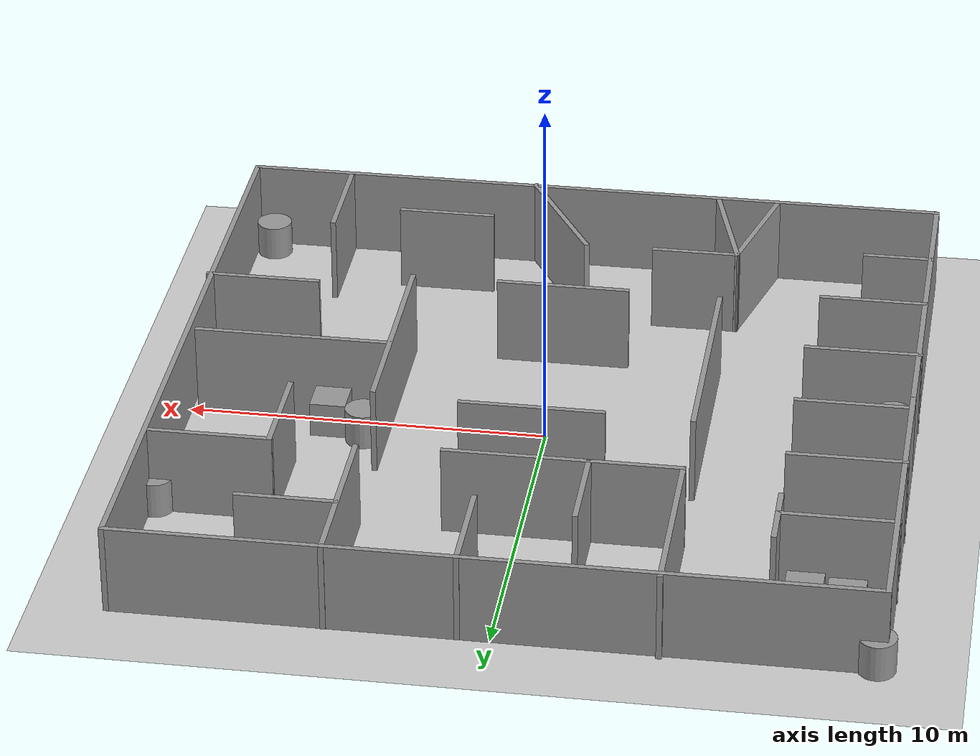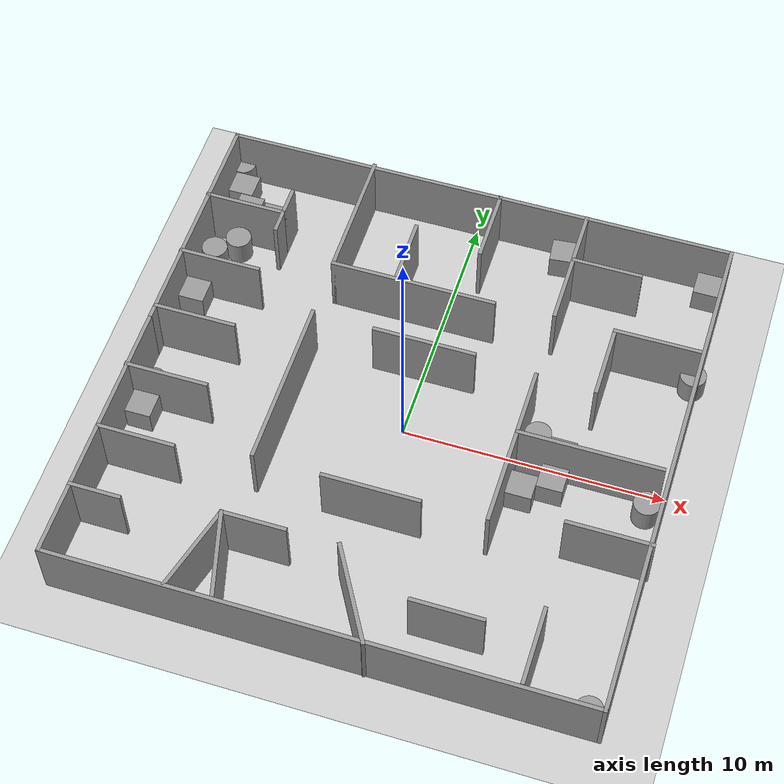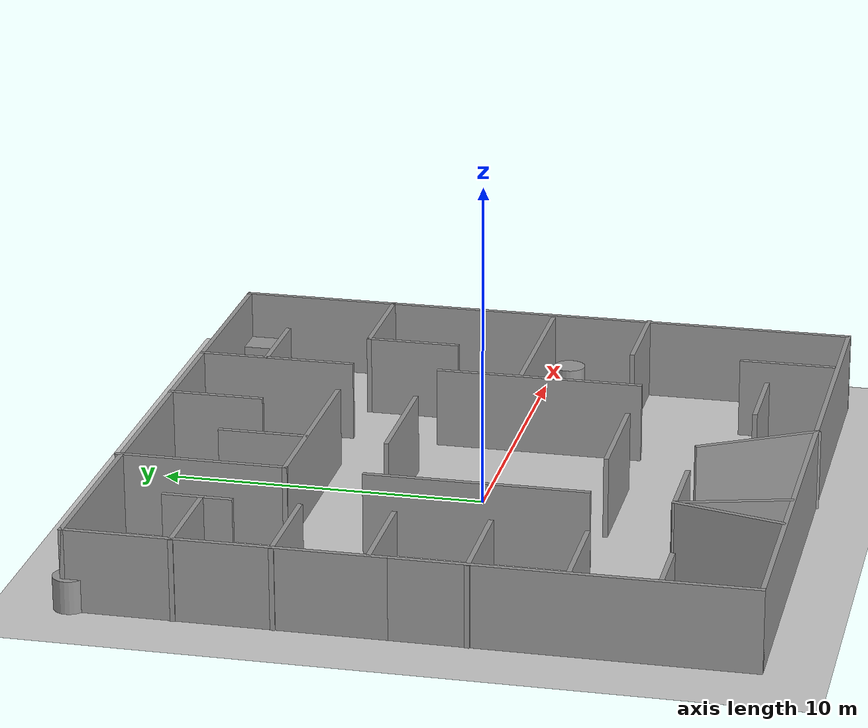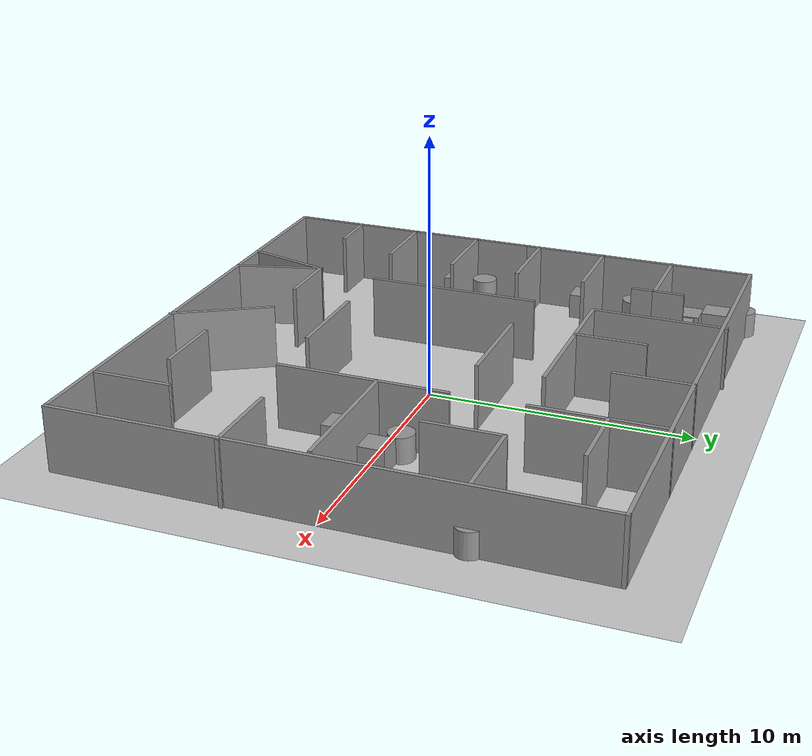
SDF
<sdf version="1.7">
 <world name="default">
  <light name="sun" type="directional">
   <pose>0 0 10 0 -0 0</pose>
   <diffuse>0.8 0.8 0.8 1</diffuse>
   <specular>0.2 0.2 0.2 1</specular>
   <attenuation>
    <range>1000</range>
    <constant>0.9</constant>
    <linear>0.01</linear>
    <quadratic>0.001</quadratic>
   </attenuation>
   <direction>-0.5 0.1 -0.9</direction>
   <spot><inner_angle>0</inner_angle><outer_angle>0</outer_angle><falloff>0</falloff></spot>
  </light>
  <model name="ground_plane">
   <static>1</static>
   <link name="link">
    <collision name="collision">
     <geometry><plane><normal>0 0 1</normal><size>100 100</size></plane></geometry>
     <surface>
      <contact><collide_bitmask>65535</collide_bitmask></contact>
      <friction><ode><mu>100</mu><mu2>50</mu2></ode></friction>
     </surface>
    </collision>
    <visual name="visual">
     <cast_shadows>0</cast_shadows>
     <geometry><plane><normal>0 0 1</normal><size>100 100</size></plane></geometry>
     <material>
      <script><uri>file://media/materials/scripts/gazebo.material</uri><name>Gazebo/Grey</name></script>
     </material>
    </visual>
   </link>
  </model>
  <gravity>0 0 -9.8</gravity>
  <magnetic_field>6e-06 2.3e-05 -4.2e-05</magnetic_field>
  <atmosphere type="adiabatic"/>
  <physics type="ode">
   <max_step_size>0.001</max_step_size>
   <real_time_factor>1</real_time_factor>
   <real_time_update_rate>1000</real_time_update_rate>
  </physics>
  <scene><ambient>0.4 0.4 0.4 1</ambient><background>0.7 0.7 0.7 1</background><shadows>1</shadows></scene>
  <spherical_coordinates>
   <surface_model>EARTH_WGS84</surface_model>
   <latitude_deg>0</latitude_deg>
   <longitude_deg>0</longitude_deg>
   <elevation>0</elevation>
   <heading_deg>0</heading_deg>
  </spherical_coordinates>
  <model name="marty">
   <pose>-0.01206 0.09181 0 0 -0 0</pose>
   <link name="Wall_10">
    <collision name="Wall_10_Collision">
     <geometry><box><size>1.25 0.15 2.5</size></box></geometry>
     <pose>0 0 1.25 0 -0 0</pose>
    </collision>
    <visual name="Wall_10_Visual">
     <pose>0 0 1.25 0 -0 0</pose>
     <geometry><box><size>1.25 0.15 2.5</size></box></geometry>
     <material>
      <script><uri>file://media/materials/scripts/gazebo.material</uri><name>Gazebo/Grey</name></script>
      <ambient>1 1 1 1</ambient>
     </material>
     <meta><layer>0</layer></meta>
    </visual>
    <pose>-7.00073 7.24115 0 0 -0 1.5708</pose>
   </link>
   <link name="Wall_12">
    <collision name="Wall_12_Collision">
     <geometry><box><size>1 0.15 2.5</size></box></geometry>
     <pose>0 0 1.25 0 -0 0</pose>
    </collision>
    <visual name="Wall_12_Visual">
     <pose>0 0 1.25 0 -0 0</pose>
     <geometry><box><size>1 0.15 2.5</size></box></geometry>
     <material>
      <script><uri>file://media/materials/scripts/gazebo.material</uri><name>Gazebo/Grey</name></script>
      <ambient>1 1 1 1</ambient>
     </material>
     <meta><layer>0</layer></meta>
    </visual>
    <pose>-7.00073 6.26615 0 0 -0 -1.5708</pose>
   </link>
   <link name="Wall_14">
    <collision name="Wall_14_Collision">
     <geometry><box><size>3.25 0.15 2.5</size></box></geometry>
     <pose>0 0 1.25 0 -0 0</pose>
    </collision>
    <visual name="Wall_14_Visual">
     <pose>0 0 1.25 0 -0 0</pose>
     <geometry><box><size>3.25 0.15 2.5</size></box></geometry>
     <material>
      <script><uri>file://media/materials/scripts/gazebo.material</uri><name>Gazebo/Grey</name></script>
      <ambient>1 1 1 1</ambient>
     </material>
     <meta><layer>0</layer></meta>
    </visual>
    <pose>-8.55073 3.78507 0 0 -0 0</pose>
   </link>
   <link name="Wall_19">
    <collision name="Wall_19_Collision">
     <geometry><box><size>3.25 0.15 2.5</size></box></geometry>
     <pose>0 0 1.25 0 -0 0</pose>
    </collision>
    <visual name="Wall_19_Visual">
     <pose>0 0 1.25 0 -0 0</pose>
     <geometry><box><size>3.25 0.15 2.5</size></box></geometry>
     <material>
      <script><uri>file://media/materials/scripts/gazebo.material</uri><name>Gazebo/Grey</name></script>
      <ambient>1 1 1 1</ambient>
     </material>
     <meta><layer>0</layer></meta>
    </visual>
    <pose>-8.52014 1.03195 0 0 -0 0</pose>
   </link>
   <link name="Wall_2">
    <collision name="Wall_2_Collision">
     <geometry><box><size>10.5 0.15 2.5</size></box></geometry>
     <pose>0 0 1.25 0 -0 0</pose>
    </collision>
    <visual name="Wall_2_Visual">
     <pose>0 0 1.25 0 -0 0</pose>
     <geometry><box><size>10.5 0.15 2.5</size></box></geometry>
     <material>
      <script><uri>file://media/materials/scripts/gazebo.material</uri><name>Gazebo/Grey</name></script>
      <ambient>1 1 1 1</ambient>
     </material>
     <meta><layer>0</layer></meta>
    </visual>
    <pose>-10.0719 -4.77295 0 0 -0 -1.5708</pose>
   </link>
   <link name="Wall_22">
    <collision name="Wall_22_Collision">
     <geometry><box><size>3.25 0.15 2.5</size></box></geometry>
     <pose>0 0 1.25 0 -0 0</pose>
    </collision>
    <visual name="Wall_22_Visual">
     <pose>0 0 1.25 0 -0 0</pose>
     <geometry><box><size>3.25 0.15 2.5</size></box></geometry>
     <material>
      <script><uri>file://media/materials/scripts/gazebo.material</uri><name>Gazebo/Grey</name></script>
      <ambient>1 1 1 1</ambient>
     </material>
     <meta><layer>0</layer></meta>
    </visual>
    <pose>-8.55073 -1.78235 0 0 -0 0</pose>
   </link>
   <link name="Wall_24">
    <collision name="Wall_24_Collision">
     <geometry><box><size>3 0.15 2.5</size></box></geometry>
     <pose>0 0 1.25 0 -0 0</pose>
    </collision>
    <visual name="Wall_24_Visual">
     <pose>0 0 1.25 0 -0 0</pose>
     <geometry><box><size>3 0.15 2.5</size></box></geometry>
     <material>
      <script><uri>file://media/materials/scripts/gazebo.material</uri><name>Gazebo/Grey</name></script>
      <ambient>1 1 1 1</ambient>
     </material>
     <meta><layer>0</layer></meta>
    </visual>
    <pose>-8.61455 -4.59665 0 0 -0 0</pose>
   </link>
   <link name="Wall_26">
    <collision name="Wall_26_Collision">
     <geometry><box><size>2 0.15 2.5</size></box></geometry>
     <pose>0 0 1.25 0 -0 0</pose>
    </collision>
    <visual name="Wall_26_Visual">
     <pose>0 0 1.25 0 -0 0</pose>
     <geometry><box><size>2 0.15 2.5</size></box></geometry>
     <material>
      <script><uri>file://media/materials/scripts/gazebo.material</uri><name>Gazebo/Grey</name></script>
      <ambient>1 1 1 1</ambient>
     </material>
     <meta><layer>0</layer></meta>
    </visual>
    <pose>-9.14514 -7.16623 0 0 -0 0</pose>
   </link>
   <link name="Wall_29">
    <collision name="Wall_29_Collision">
     <geometry><box><size>6.75 0.15 2.5</size></box></geometry>
     <pose>0 0 1.25 0 -0 0</pose>
    </collision>
    <visual name="Wall_29_Visual">
     <pose>0 0 1.25 0 -0 0</pose>
     <geometry><box><size>6.75 0.15 2.5</size></box></geometry>
     <material>
      <script><uri>file://media/materials/scripts/gazebo.material</uri><name>Gazebo/Grey</name></script>
      <ambient>1 1 1 1</ambient>
     </material>
     <meta><layer>0</layer></meta>
    </visual>
    <pose>-4.34976 -0.799715 0 0 -0 -1.5708</pose>
   </link>
   <link name="Wall_3">
    <collision name="Wall_3_Collision">
     <geometry><box><size>20.25 0.15 2.5</size></box></geometry>
     <pose>0 0 1.25 0 -0 0</pose>
    </collision>
    <visual name="Wall_3_Visual">
     <pose>0 0 1.25 0 -0 0</pose>
     <geometry><box><size>20.25 0.15 2.5</size></box></geometry>
     <material>
      <script><uri>file://media/materials/scripts/gazebo.material</uri><name>Gazebo/Grey</name></script>
      <ambient>1 1 1 1</ambient>
     </material>
     <meta><layer>0</layer></meta>
    </visual>
    <pose>-0.021885 -9.94795 0 0 -0 0</pose>
   </link>
   <link name="Wall_31">
    <collision name="Wall_31_Collision">
     <geometry><box><size>3.75 0.15 2.5</size></box></geometry>
     <pose>0 0 1.25 0 -0 0</pose>
    </collision>
    <visual name="Wall_31_Visual">
     <pose>0 0 1.25 0 -0 0</pose>
     <geometry><box><size>3.75 0.15 2.5</size></box></geometry>
     <material>
      <script><uri>file://media/materials/scripts/gazebo.material</uri><name>Gazebo/Grey</name></script>
      <ambient>1 1 1 1</ambient>
     </material>
     <meta><layer>0</layer></meta>
    </visual>
    <pose>0.080997 -4.16838 0 0 -0 0</pose>
   </link>
   <link name="Wall_33">
    <collision name="Wall_33_Collision">
     <geometry><box><size>4 0.15 2.5</size></box></geometry>
     <pose>0 0 1.25 0 -0 0</pose>
    </collision>
    <visual name="Wall_33_Visual">
     <pose>0 0 1.25 0 -0 0</pose>
     <geometry><box><size>4 0.15 2.5</size></box></geometry>
     <material>
      <script><uri>file://media/materials/scripts/gazebo.material</uri><name>Gazebo/Grey</name></script>
      <ambient>1 1 1 1</ambient>
     </material>
     <meta><layer>0</layer></meta>
    </visual>
    <pose>0.022455 2.4391 0 0 -0 0</pose>
   </link>
   <link name="Wall_35">
    <collision name="Wall_35_Collision">
     <geometry><box><size>6.5 0.15 2.5</size></box></geometry>
     <pose>0 0 1.25 0 -0 0</pose>
    </collision>
    <visual name="Wall_35_Visual">
     <pose>0 0 1.25 0 -0 0</pose>
     <geometry><box><size>6.5 0.15 2.5</size></box></geometry>
     <material>
      <script><uri>file://media/materials/scripts/gazebo.material</uri><name>Gazebo/Grey</name></script>
      <ambient>1 1 1 1</ambient>
     </material>
     <meta><layer>0</layer></meta>
    </visual>
    <pose>4.36845 -0.950027 0 0 -0 -1.5708</pose>
   </link>
   <link name="Wall_37">
    <collision name="Wall_37_Collision">
     <geometry><box><size>5.25 0.15 2.5</size></box></geometry>
     <pose>0 0 1.25 0 -0 0</pose>
    </collision>
    <visual name="Wall_37_Visual">
     <pose>0 0 1.25 0 -0 0</pose>
     <geometry><box><size>5.25 0.15 2.5</size></box></geometry>
     <material>
      <script><uri>file://media/materials/scripts/gazebo.material</uri><name>Gazebo/Grey</name></script>
      <ambient>1 1 1 1</ambient>
     </material>
     <meta><layer>0</layer></meta>
    </visual>
    <pose>-4.34976 7.46691 0 0 -0 1.5708</pose>
   </link>
   <link name="Wall_39">
    <collision name="Wall_39_Collision">
     <geometry><box><size>5 0.15 2.5</size></box></geometry>
     <pose>0 0 1.25 0 -0 0</pose>
    </collision>
    <visual name="Wall_39_Visual">
     <pose>0 0 1.25 0 -0 0</pose>
     <geometry><box><size>5 0.15 2.5</size></box></geometry>
     <material>
      <script><uri>file://media/materials/scripts/gazebo.material</uri><name>Gazebo/Grey</name></script>
      <ambient>1 1 1 1</ambient>
     </material>
     <meta><layer>0</layer></meta>
    </visual>
    <pose>4.33141 7.48953 0 0 -0 -1.5708</pose>
   </link>
   <link name="Wall_4">
    <collision name="Wall_4_Collision">
     <geometry><box><size>20 0.15 2.5</size></box></geometry>
     <pose>0 0 1.25 0 -0 0</pose>
    </collision>
    <visual name="Wall_4_Visual">
     <pose>0 0 1.25 0 -0 0</pose>
     <geometry><box><size>20 0.15 2.5</size></box></geometry>
     <material>
      <script><uri>file://media/materials/scripts/gazebo.material</uri><name>Gazebo/Grey</name></script>
      <ambient>1 1 1 1</ambient>
     </material>
     <meta><layer>0</layer></meta>
    </visual>
    <pose>10.0281 -0.022954 0 0 -0 1.5708</pose>
   </link>
   <link name="Wall_41">
    <collision name="Wall_41_Collision">
     <geometry><box><size>6.5 0.15 2.5</size></box></geometry>
     <pose>0 0 1.25 0 -0 0</pose>
    </collision>
    <visual name="Wall_41_Visual">
     <pose>0 0 1.25 0 -0 0</pose>
     <geometry><box><size>6.5 0.15 2.5</size></box></geometry>
     <material>
      <script><uri>file://media/materials/scripts/gazebo.material</uri><name>Gazebo/Grey</name></script>
      <ambient>1 1 1 1</ambient>
     </material>
     <meta><layer>0</layer></meta>
    </visual>
    <pose>-1.17476 4.91691 0 0 -0 0</pose>
   </link>
   <link name="Wall_43">
    <collision name="Wall_43_Collision">
     <geometry><box><size>3 0.15 2.5</size></box></geometry>
     <pose>0 0 1.25 0 -0 0</pose>
    </collision>
    <visual name="Wall_43_Visual">
     <pose>0 0 1.25 0 -0 0</pose>
     <geometry><box><size>3 0.15 2.5</size></box></geometry>
     <material>
      <script><uri>file://media/materials/scripts/gazebo.material</uri><name>Gazebo/Grey</name></script>
      <ambient>1 1 1 1</ambient>
     </material>
     <meta><layer>0</layer></meta>
    </visual>
    <pose>0.848711 8.48953 0 0 -0 -1.5708</pose>
   </link>
   <link name="Wall_46">
    <collision name="Wall_46_Collision">
     <geometry><box><size>2.75 0.15 2.5</size></box></geometry>
     <pose>0 0 1.25 0 -0 0</pose>
    </collision>
    <visual name="Wall_46_Visual">
     <pose>0 0 1.25 0 -0 0</pose>
     <geometry><box><size>2.75 0.15 2.5</size></box></geometry>
     <material>
      <script><uri>file://media/materials/scripts/gazebo.material</uri><name>Gazebo/Grey</name></script>
      <ambient>1 1 1 1</ambient>
     </material>
     <meta><layer>0</layer></meta>
    </visual>
    <pose>-1.86005 6.25755 0 0 -0 -1.5708</pose>
   </link>
   <link name="Wall_48">
    <collision name="Wall_48_Collision">
     <geometry><box><size>2.75 0.15 2.5</size></box></geometry>
     <pose>0 0 1.25 0 -0 0</pose>
    </collision>
    <visual name="Wall_48_Visual">
     <pose>0 0 1.25 0 -0 0</pose>
     <geometry><box><size>2.75 0.15 2.5</size></box></geometry>
     <material>
      <script><uri>file://media/materials/scripts/gazebo.material</uri><name>Gazebo/Grey</name></script>
      <ambient>1 1 1 1</ambient>
     </material>
     <meta><layer>0</layer></meta>
    </visual>
    <pose>5.66659 7.8038 0 0 -0 0</pose>
   </link>
   <link name="Wall_5">
    <collision name="Wall_5_Collision">
     <geometry><box><size>20.25 0.15 2.5</size></box></geometry>
     <pose>0 0 1.25 0 -0 0</pose>
    </collision>
    <visual name="Wall_5_Visual">
     <pose>0 0 1.25 0 -0 0</pose>
     <geometry><box><size>20.25 0.15 2.5</size></box></geometry>
     <material>
      <script><uri>file://media/materials/scripts/gazebo.material</uri><name>Gazebo/Grey</name></script>
      <ambient>1 1 1 1</ambient>
     </material>
     <meta><layer>0</layer></meta>
    </visual>
    <pose>-0.021885 9.90205 0 0 -0 3.14159</pose>
   </link>
   <link name="Wall_50">
    <collision name="Wall_50_Collision">
     <geometry><box><size>3.5 0.15 2.5</size></box></geometry>
     <pose>0 0 1.25 0 -0 0</pose>
    </collision>
    <visual name="Wall_50_Visual">
     <pose>0 0 1.25 0 -0 0</pose>
     <geometry><box><size>3.5 0.15 2.5</size></box></geometry>
     <material>
      <script><uri>file://media/materials/scripts/gazebo.material</uri><name>Gazebo/Grey</name></script>
      <ambient>1 1 1 1</ambient>
     </material>
     <meta><layer>0</layer></meta>
    </visual>
    <pose>8.32821 5.02468 0 0 -0 0</pose>
   </link>
   <link name="Wall_52">
    <collision name="Wall_52_Collision">
     <geometry><box><size>3 0.15 2.5</size></box></geometry>
     <pose>0 0 1.25 0 -0 0</pose>
    </collision>
    <visual name="Wall_52_Visual">
     <pose>0 0 1.25 0 -0 0</pose>
     <geometry><box><size>3 0.15 2.5</size></box></geometry>
     <material>
      <script><uri>file://media/materials/scripts/gazebo.material</uri><name>Gazebo/Grey</name></script>
      <ambient>1 1 1 1</ambient>
     </material>
     <meta><layer>0</layer></meta>
    </visual>
    <pose>6.65321 3.59968 0 0 -0 -1.5708</pose>
   </link>
   <link name="Wall_55">
    <collision name="Wall_55_Collision">
     <geometry><box><size>5.5 0.15 2.5</size></box></geometry>
     <pose>0 0 1.25 0 -0 0</pose>
    </collision>
    <visual name="Wall_55_Visual">
     <pose>0 0 1.25 0 -0 0</pose>
     <geometry><box><size>5.5 0.15 2.5</size></box></geometry>
     <material>
      <script><uri>file://media/materials/scripts/gazebo.material</uri><name>Gazebo/Grey</name></script>
      <ambient>1 1 1 1</ambient>
     </material>
     <meta><layer>0</layer></meta>
    </visual>
    <pose>7.07677 -0.35767 0 0 -0 0</pose>
   </link>
   <link name="Wall_57">
    <collision name="Wall_57_Collision">
     <geometry><box><size>3.5 0.15 2.5</size></box></geometry>
     <pose>0 0 1.25 0 -0 0</pose>
    </collision>
    <visual name="Wall_57_Visual">
     <pose>0 0 1.25 0 -0 0</pose>
     <geometry><box><size>3.5 0.15 2.5</size></box></geometry>
     <material>
      <script><uri>file://media/materials/scripts/gazebo.material</uri><name>Gazebo/Grey</name></script>
      <ambient>1 1 1 1</ambient>
     </material>
     <meta><layer>0</layer></meta>
    </visual>
    <pose>-5.01476 -8.27319 0 0 -0 1.309</pose>
   </link>
   <link name="Wall_58">
    <collision name="Wall_58_Collision">
     <geometry><box><size>3.5 0.15 2.5</size></box></geometry>
     <pose>0 0 1.25 0 -0 0</pose>
    </collision>
    <visual name="Wall_58_Visual">
     <pose>0 0 1.25 0 -0 0</pose>
     <geometry><box><size>3.5 0.15 2.5</size></box></geometry>
     <material>
      <script><uri>file://media/materials/scripts/gazebo.material</uri><name>Gazebo/Grey</name></script>
      <ambient>1 1 1 1</ambient>
     </material>
     <meta><layer>0</layer></meta>
    </visual>
    <pose>-4.14772 -8.27319 0 0 -0 -1.309</pose>
   </link>
   <link name="Wall_6">
    <collision name="Wall_6_Collision">
     <geometry><box><size>9.5 0.15 2.5</size></box></geometry>
     <pose>0 0 1.25 0 -0 0</pose>
    </collision>
    <visual name="Wall_6_Visual">
     <pose>0 0 1.25 0 -0 0</pose>
     <geometry><box><size>9.5 0.15 2.5</size></box></geometry>
     <material>
      <script><uri>file://media/materials/scripts/gazebo.material</uri><name>Gazebo/Grey</name></script>
      <ambient>1 1 1 1</ambient>
     </material>
     <meta><layer>0</layer></meta>
    </visual>
    <pose>-10.0719 5.22705 0 0 -0 -1.5708</pose>
   </link>
   <link name="Wall_61">
    <collision name="Wall_61_Collision">
     <geometry><box><size>4 0.15 2.5</size></box></geometry>
     <pose>0 0 1.25 0 -0 0</pose>
    </collision>
    <visual name="Wall_61_Visual">
     <pose>0 0 1.25 0 -0 0</pose>
     <geometry><box><size>4 0.15 2.5</size></box></geometry>
     <material>
      <script><uri>file://media/materials/scripts/gazebo.material</uri><name>Gazebo/Grey</name></script>
      <ambient>1 1 1 1</ambient>
     </material>
     <meta><layer>0</layer></meta>
    </visual>
    <pose>0.731257 -8.32236 0 0 -0 -1.0472</pose>
   </link>
   <link name="Wall_63">
    <collision name="Wall_63_Collision">
     <geometry><box><size>2.5 0.15 2.5</size></box></geometry>
     <pose>0 0 1.25 0 -0 0</pose>
    </collision>
    <visual name="Wall_63_Visual">
     <pose>0 0 1.25 0 -0 0</pose>
     <geometry><box><size>2.5 0.15 2.5</size></box></geometry>
     <material>
      <script><uri>file://media/materials/scripts/gazebo.material</uri><name>Gazebo/Grey</name></script>
      <ambient>1 1 1 1</ambient>
     </material>
     <meta><layer>0</layer></meta>
    </visual>
    <pose>-3.40624 -6.65526 0 0 -0 0</pose>
   </link>
   <link name="Wall_69">
    <collision name="Wall_69_Collision">
     <geometry><box><size>3.25 0.15 2.5</size></box></geometry>
     <pose>0 0 1.25 0 -0 0</pose>
    </collision>
    <visual name="Wall_69_Visual">
     <pose>0 0 1.25 0 -0 0</pose>
     <geometry><box><size>3.25 0.15 2.5</size></box></geometry>
     <material>
      <script><uri>file://media/materials/scripts/gazebo.material</uri><name>Gazebo/Grey</name></script>
      <ambient>1 1 1 1</ambient>
     </material>
     <meta><layer>0</layer></meta>
    </visual>
    <pose>8.55073 -3.4534 0 0 -0 3.14159</pose>
   </link>
   <link name="Wall_72">
    <collision name="Wall_72_Collision">
     <geometry><box><size>2.75 0.15 2.5</size></box></geometry>
     <pose>0 0 1.25 0 -0 0</pose>
    </collision>
    <visual name="Wall_72_Visual">
     <pose>0 0 1.25 0 -0 0</pose>
     <geometry><box><size>2.75 0.15 2.5</size></box></geometry>
     <material>
      <script><uri>file://media/materials/scripts/gazebo.material</uri><name>Gazebo/Grey</name></script>
      <ambient>1 1 1 1</ambient>
     </material>
     <meta><layer>0</layer></meta>
    </visual>
    <pose>4.01319 -7.95628 0 0 -0 0</pose>
   </link>
   <link name="Wall_74">
    <collision name="Wall_74_Collision">
     <geometry><box><size>3 0.15 2.5</size></box></geometry>
     <pose>0 0 1.25 0 -0 0</pose>
    </collision>
    <visual name="Wall_74_Visual">
     <pose>0 0 1.25 0 -0 0</pose>
     <geometry><box><size>3 0.15 2.5</size></box></geometry>
     <material>
      <script><uri>file://media/materials/scripts/gazebo.material</uri><name>Gazebo/Grey</name></script>
      <ambient>1 1 1 1</ambient>
     </material>
     <meta><layer>0</layer></meta>
    </visual>
    <pose>7.18089 -8.3611 0 0 -0 -1.5708</pose>
   </link>
   <link name="Wall_9">
    <collision name="Wall_9_Collision">
     <geometry><box><size>3.25 0.15 2.5</size></box></geometry>
     <pose>0 0 1.25 0 -0 0</pose>
    </collision>
    <visual name="Wall_9_Visual">
     <pose>0 0 1.25 0 -0 0</pose>
     <geometry><box><size>3.25 0.15 2.5</size></box></geometry>
     <material>
      <script><uri>file://media/materials/scripts/gazebo.material</uri><name>Gazebo/Grey</name></script>
      <ambient>1 1 1 1</ambient>
     </material>
     <meta><layer>0</layer></meta>
    </visual>
    <pose>-8.55073 6.69115 0 0 -0 0</pose>
   </link>
   <static>1</static>
  </model>
  <model name="unit_cylinder">
   <pose>-9.87235 9.87202 0.499992 -3e-06 2e-06 0</pose>
   <link name="link">
    <inertial>
     <mass>1</mass>
     <inertia><ixx>0.145833</ixx><ixy>0</ixy><ixz>0</ixz><iyy>0.145833</iyy><iyz>0</iyz><izz>0.125</izz></inertia>
    </inertial>
    <collision name="collision">
     <geometry><cylinder><radius>0.5</radius><length>1</length></cylinder></geometry>
    </collision>
    <visual name="visual">
     <geometry><cylinder><radius>0.5</radius><length>1</length></cylinder></geometry>
     <material>
      <script><name>Gazebo/Grey</name><uri>file://media/materials/scripts/gazebo.material</uri></script>
     </material>
    </visual>
   </link>
  </model>
  <model name="unit_cylinder_0">
   <pose>9.82054 5.0565 0.499994 -4e-06 -3e-06 -0</pose>
   <link name="link">
    <inertial>
     <mass>1</mass>
     <inertia><ixx>0.145833</ixx><ixy>0</ixy><ixz>0</ixz><iyy>0.145833</iyy><iyz>0</iyz><izz>0.125</izz></inertia>
    </inertial>
    <collision name="collision">
     <geometry><cylinder><radius>0.5</radius><length>1</length></cylinder></geometry>
    </collision>
    <visual name="visual">
     <geometry><cylinder><radius>0.5</radius><length>1</length></cylinder></geometry>
     <material>
      <script><name>Gazebo/Grey</name><uri>file://media/materials/scripts/gazebo.material</uri></script>
     </material>
    </visual>
   </link>
  </model>
  <model name="unit_box">
   <pose>3.68325 9.35726 0.5 0 -0 0.099063</pose>
   <link name="link">
    <inertial>
     <mass>1</mass>
     <inertia>
      <ixx>0.166667</ixx>
      <ixy>0</ixy>
      <ixz>0</ixz>
      <iyy>0.166667</iyy>
      <iyz>0</iyz>
      <izz>0.166667</izz>
     </inertia>
    </inertial>
    <collision name="collision"><geometry><box><size>1 1 1</size></box></geometry></collision>
    <visual name="visual">
     <geometry><box><size>1 1 1</size></box></geometry>
     <material>
      <script><name>Gazebo/Grey</name><uri>file://media/materials/scripts/gazebo.material</uri></script>
     </material>
    </visual>
   </link>
  </model>
  <model name="unit_box_0">
   <pose>9.44096 9.41841 0.499995 -1e-05 -0 5e-06</pose>
   <link name="link">
    <inertial>
     <mass>1</mass>
     <inertia>
      <ixx>0.166667</ixx>
      <ixy>0</ixy>
      <ixz>0</ixz>
      <iyy>0.166667</iyy>
      <iyz>0</iyz>
      <izz>0.166667</izz>
     </inertia>
    </inertial>
    <collision name="collision"><geometry><box><size>1 1 1</size></box></geometry></collision>
    <visual name="visual">
     <geometry><box><size>1 1 1</size></box></geometry>
     <material>
      <script><name>Gazebo/Grey</name><uri>file://media/materials/scripts/gazebo.material</uri></script>
     </material>
    </visual>
   </link>
  </model>
  <model name="unit_cylinder_1">
   <pose>9.441 -0.886282 0.499998 3e-06 -2e-06 -5e-06</pose>
   <link name="link">
    <inertial>
     <mass>1</mass>
     <inertia><ixx>0.145833</ixx><ixy>0</ixy><ixz>0</ixz><iyy>0.145833</iyy><iyz>0</iyz><izz>0.125</izz></inertia>
    </inertial>
    <collision name="collision">
     <geometry><cylinder><radius>0.5</radius><length>1</length></cylinder></geometry>
    </collision>
    <visual name="visual">
     <geometry><cylinder><radius>0.5</radius><length>1</length></cylinder></geometry>
     <material>
      <script><name>Gazebo/Grey</name><uri>file://media/materials/scripts/gazebo.material</uri></script>
     </material>
    </visual>
   </link>
  </model>
  <model name="unit_cylinder_2">
   <pose>9.44103 -9.28113 0.499997 3e-06 -4e-06 -0.003858</pose>
   <link name="link">
    <inertial>
     <mass>1</mass>
     <inertia><ixx>0.145833</ixx><ixy>0</ixy><ixz>0</ixz><iyy>0.145833</iyy><iyz>0</iyz><izz>0.125</izz></inertia>
    </inertial>
    <collision name="collision">
     <geometry><cylinder><radius>0.5</radius><length>1</length></cylinder></geometry>
    </collision>
    <visual name="visual">
     <geometry><cylinder><radius>0.5</radius><length>1</length></cylinder></geometry>
     <material>
      <script><name>Gazebo/Grey</name><uri>file://media/materials/scripts/gazebo.material</uri></script>
     </material>
    </visual>
   </link>
  </model>
  <model name="unit_box_1">
   <pose>-9.48497 3.30188 0.499995 0 1e-05 0</pose>
   <link name="link">
    <inertial>
     <mass>1</mass>
     <inertia>
      <ixx>0.166667</ixx>
      <ixy>0</ixy>
      <ixz>0</ixz>
      <iyy>0.166667</iyy>
      <iyz>0</iyz>
      <izz>0.166667</izz>
     </inertia>
    </inertial>
    <collision name="collision"><geometry><box><size>1 1 1</size></box></geometry></collision>
    <visual name="visual">
     <geometry><box><size>1 1 1</size></box></geometry>
     <material>
      <script><name>Gazebo/Grey</name><uri>file://media/materials/scripts/gazebo.material</uri></script>
     </material>
    </visual>
   </link>
  </model>
  <model name="unit_cylinder_3">
   <pose>-9.48471 -1.11552 0.5 0 -0 0</pose>
   <link name="link">
    <inertial>
     <mass>1</mass>
     <inertia><ixx>0.145833</ixx><ixy>0</ixy><ixz>0</ixz><iyy>0.145833</iyy><iyz>0</iyz><izz>0.125</izz></inertia>
    </inertial>
    <collision name="collision">
     <geometry><cylinder><radius>0.5</radius><length>1</length></cylinder></geometry>
    </collision>
    <visual name="visual">
     <geometry><cylinder><radius>0.5</radius><length>1</length></cylinder></geometry>
     <material>
      <script><name>Gazebo/Grey</name><uri>file://media/materials/scripts/gazebo.material</uri></script>
     </material>
    </visual>
   </link>
  </model>
  <model name="unit_box_2">
   <pose>-9.45555 -2.26553 0.499995 0 1e-05 0</pose>
   <link name="link">
    <inertial>
     <mass>1</mass>
     <inertia>
      <ixx>0.166667</ixx>
      <ixy>0</ixy>
      <ixz>0</ixz>
      <iyy>0.166667</iyy>
      <iyz>0</iyz>
      <izz>0.166667</izz>
     </inertia>
    </inertial>
    <collision name="collision"><geometry><box><size>1 1 1</size></box></geometry></collision>
    <visual name="visual">
     <geometry><box><size>1 1 1</size></box></geometry>
     <material>
      <script><name>Gazebo/Grey</name><uri>file://media/materials/scripts/gazebo.material</uri></script>
     </material>
    </visual>
   </link>
  </model>
  <model name="unit_box_3">
   <pose>-9.46776 8.85031 0.499995 0 -1e-05 0</pose>
   <link name="link">
    <inertial>
     <mass>1</mass>
     <inertia>
      <ixx>0.166667</ixx>
      <ixy>0</ixy>
      <ixz>0</ixz>
      <iyy>0.166667</iyy>
      <iyz>0</iyz>
      <izz>0.166667</izz>
     </inertia>
    </inertial>
    <collision name="collision"><geometry><box><size>1 1 1</size></box></geometry></collision>
    <visual name="visual">
     <geometry><box><size>1 1 1</size></box></geometry>
     <material>
      <script><name>Gazebo/Grey</name><uri>file://media/materials/scripts/gazebo.material</uri></script>
     </material>
    </visual>
   </link>
  </model>
  <model name="unit_box_4">
   <pose>-8.92146 7.83721 0.499995 -1e-05 -0 -0</pose>
   <link name="link">
    <inertial>
     <mass>1</mass>
     <inertia>
      <ixx>0.166667</ixx>
      <ixy>0</ixy>
      <ixz>0</ixz>
      <iyy>0.166667</iyy>
      <iyz>0</iyz>
      <izz>0.166667</izz>
     </inertia>
    </inertial>
    <collision name="collision"><geometry><box><size>1 1 1</size></box></geometry></collision>
    <visual name="visual">
     <geometry><box><size>1 1 1</size></box></geometry>
     <material>
      <script><name>Gazebo/Grey</name><uri>file://media/materials/scripts/gazebo.material</uri></script>
     </material>
    </visual>
   </link>
  </model>
  <model name="unit_box_5">
   <pose>-7.81765 7.67956 0.499995 0 -1e-05 0</pose>
   <link name="link">
    <inertial>
     <mass>1</mass>
     <inertia>
      <ixx>0.166667</ixx>
      <ixy>0</ixy>
      <ixz>0</ixz>
      <iyy>0.166667</iyy>
      <iyz>0</iyz>
      <izz>0.166667</izz>
     </inertia>
    </inertial>
    <collision name="collision"><geometry><box><size>1 1 1</size></box></geometry></collision>
    <visual name="visual">
     <geometry><box><size>1 1 1</size></box></geometry>
     <material>
      <script><name>Gazebo/Grey</name><uri>file://media/materials/scripts/gazebo.material</uri></script>
     </material>
    </visual>
   </link>
  </model>
  <model name="unit_cylinder_4">
   <pose>-8.75492 6.20255 0.499994 -4e-06 -4e-06 -0</pose>
   <link name="link">
    <inertial>
     <mass>1</mass>
     <inertia><ixx>0.145833</ixx><ixy>0</ixy><ixz>0</ixz><iyy>0.145833</iyy><iyz>0</iyz><izz>0.125</izz></inertia>
    </inertial>
    <collision name="collision">
     <geometry><cylinder><radius>0.5</radius><length>1</length></cylinder></geometry>
    </collision>
    <visual name="visual">
     <geometry><cylinder><radius>0.5</radius><length>1</length></cylinder></geometry>
     <material>
      <script><name>Gazebo/Grey</name><uri>file://media/materials/scripts/gazebo.material</uri></script>
     </material>
    </visual>
   </link>
  </model>
  <model name="unit_cylinder_5">
   <pose>-9.48133 5.45804 0.499992 -3e-06 4e-06 0</pose>
   <link name="link">
    <inertial>
     <mass>1</mass>
     <inertia><ixx>0.145833</ixx><ixy>0</ixy><ixz>0</ixz><iyy>0.145833</iyy><iyz>0</iyz><izz>0.125</izz></inertia>
    </inertial>
    <collision name="collision">
     <geometry><cylinder><radius>0.5</radius><length>1</length></cylinder></geometry>
    </collision>
    <visual name="visual">
     <geometry><cylinder><radius>0.5</radius><length>1</length></cylinder></geometry>
     <material>
      <script><name>Gazebo/Grey</name><uri>file://media/materials/scripts/gazebo.material</uri></script>
     </material>
    </visual>
   </link>
  </model>
  <model name="unit_box_6">
   <pose>4.9314 -1.47263 0.5 0 -0 1e-05</pose>
   <link name="link">
    <inertial>
     <mass>1</mass>
     <inertia>
      <ixx>0.166667</ixx>
      <ixy>0</ixy>
      <ixz>0</ixz>
      <iyy>0.166667</iyy>
      <iyz>0</iyz>
      <izz>0.166667</izz>
     </inertia>
    </inertial>
    <collision name="collision"><geometry><box><size>1 1 1</size></box></geometry></collision>
    <visual name="visual">
     <geometry><box><size>1 1 1</size></box></geometry>
     <material>
      <script><name>Gazebo/Grey</name><uri>file://media/materials/scripts/gazebo.material</uri></script>
     </material>
    </visual>
   </link>
  </model>
  <model name="unit_box_7">
   <pose>5.9314 -0.871328 0.499995 -1e-05 -0 8e-06</pose>
   <link name="link">
    <inertial>
     <mass>1</mass>
     <inertia>
      <ixx>0.166667</ixx>
      <ixy>0</ixy>
      <ixz>0</ixz>
      <iyy>0.166667</iyy>
      <iyz>0</iyz>
      <izz>0.166667</izz>
     </inertia>
    </inertial>
    <collision name="collision"><geometry><box><size>1 1 1</size></box></geometry></collision>
    <visual name="visual">
     <geometry><box><size>1 1 1</size></box></geometry>
     <material>
      <script><name>Gazebo/Grey</name><uri>file://media/materials/scripts/gazebo.material</uri></script>
     </material>
    </visual>
   </link>
  </model>
  <model name="unit_cylinder_6">
   <pose>4.93393 0.847089 0.499994 -4e-06 2e-06 0.003962</pose>
   <link name="link">
    <inertial>
     <mass>1</mass>
     <inertia><ixx>0.145833</ixx><ixy>0</ixy><ixz>0</ixz><iyy>0.145833</iyy><iyz>0</iyz><izz>0.125</izz></inertia>
    </inertial>
    <collision name="collision">
     <geometry><cylinder><radius>0.5</radius><length>1</length></cylinder></geometry>
    </collision>
    <visual name="visual">
     <geometry><cylinder><radius>0.5</radius><length>1</length></cylinder></geometry>
     <material>
      <script><name>Gazebo/Grey</name><uri>file://media/materials/scripts/gazebo.material</uri></script>
     </material>
    </visual>
   </link>
  </model>
  <model name="unit_box_8">
   <pose>5.93299 0.338678 0.499995 1e-05 -0 -0.001777</pose>
   <link name="link">
    <inertial>
     <mass>1</mass>
     <inertia>
      <ixx>0.166667</ixx>
      <ixy>0</ixy>
      <ixz>0</ixz>
      <iyy>0.166667</iyy>
      <iyz>0</iyz>
      <izz>0.166667</izz>
     </inertia>
    </inertial>
    <collision name="collision"><geometry><box><size>1 1 1</size></box></geometry></collision>
    <visual name="visual">
     <geometry><box><size>1 1 1</size></box></geometry>
     <material>
      <script><name>Gazebo/Grey</name><uri>file://media/materials/scripts/gazebo.material</uri></script>
     </material>
    </visual>
   </link>
  </model>
 </world>
</sdf>
